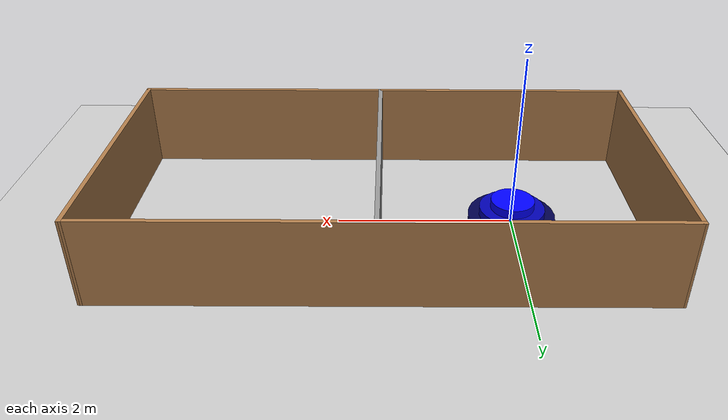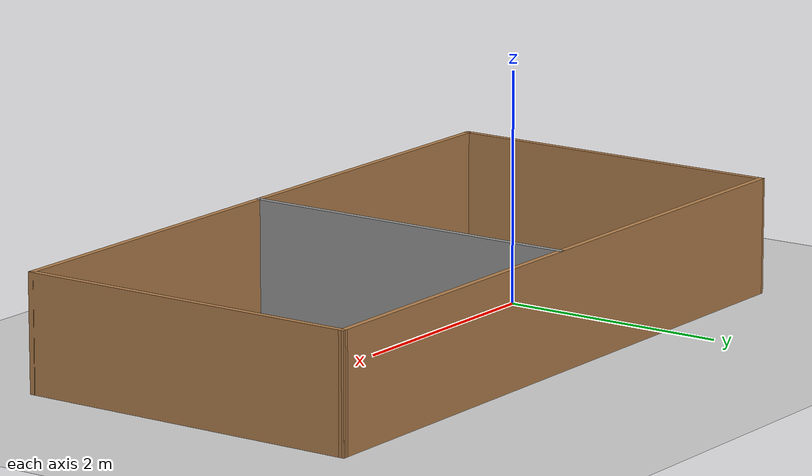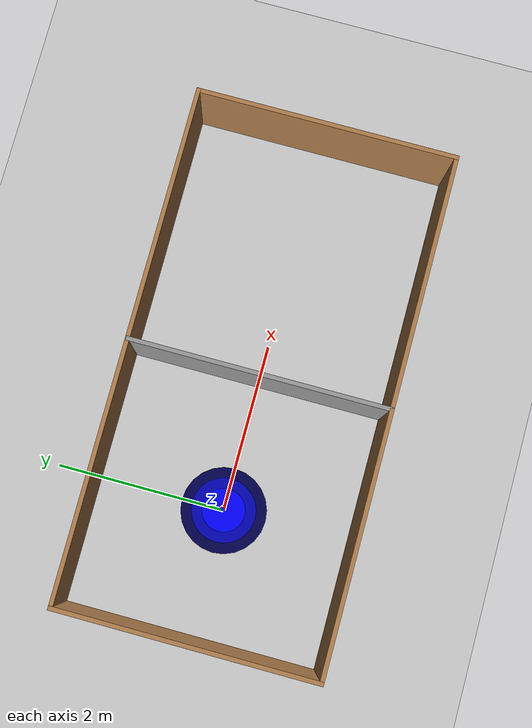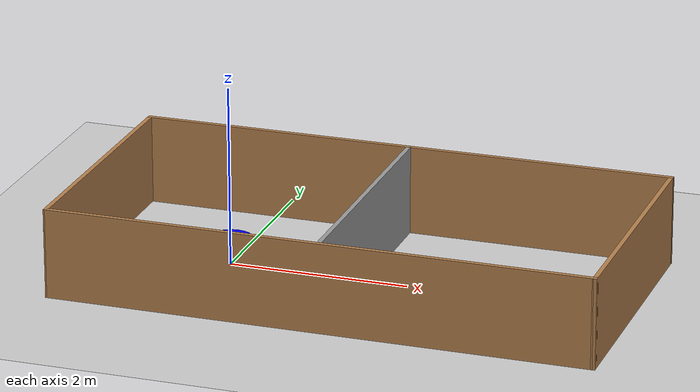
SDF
<sdf version="1.6">
 <world name="default">
  <light name="sun" type="directional">
   <pose>0 0 10 0 -0 0</pose>
   <diffuse>0.8 0.8 0.8 1</diffuse>
   <specular>0.2 0.2 0.2 1</specular>
   <attenuation>
    <range>1000</range>
    <constant>0.9</constant>
    <linear>0.01</linear>
    <quadratic>0.001</quadratic>
   </attenuation>
   <direction>-0.5 0.1 -0.9</direction>
  </light>
  <model name="ground_plane">
   <static>1</static>
   <link name="link">
    <collision name="collision">
     <geometry><plane><normal>0 0 1</normal><size>100 100</size></plane></geometry>
     <surface>
      <contact><collide_bitmask>65535</collide_bitmask></contact>
      <friction><ode><mu>100</mu><mu2>50</mu2></ode></friction>
     </surface>
    </collision>
    <visual name="visual">
     <cast_shadows>0</cast_shadows>
     <geometry><plane><normal>0 0 1</normal><size>100 100</size></plane></geometry>
     <material>
      <script><uri>file://media/materials/scripts/gazebo.material</uri><name>Gazebo/Grey</name></script>
     </material>
    </visual>
   </link>
  </model>
  <gravity>0 0 -9.8</gravity>
  <magnetic_field>6e-06 2.3e-05 -4.2e-05</magnetic_field>
  <atmosphere type="adiabatic"/>
  <physics type="ode">
   <ode>
    <solver><type>quick</type><iters>1000</iters><sor>1.3</sor></solver>
    <constraints>
     <cfm>0</cfm>
     <erp>0.2</erp>
     <contact_max_correcting_vel>100</contact_max_correcting_vel>
     <contact_surface_layer>0.001</contact_surface_layer>
    </constraints>
   </ode>
   <max_step_size>0.01</max_step_size>
   <real_time_factor>1</real_time_factor>
   <real_time_update_rate>100</real_time_update_rate>
   <gravity>0 0 -9.8</gravity>
  </physics>
  <scene><ambient>0.4 0.4 0.4 1</ambient><background>0.7 0.7 0.7 1</background><shadows>1</shadows></scene>
  <plugin name="ros_interface_plugin" filename="librotors_gazebo_ros_interface_plugin.so"/>
  <spherical_coordinates>
   <surface_model>EARTH_WGS84</surface_model>
   <latitude_deg>47.3667</latitude_deg>
   <longitude_deg>8.5500</longitude_deg>
   <elevation>500.0</elevation>
   <heading_deg>0</heading_deg>
  </spherical_coordinates>
  <model name="cylinder_load">
   <link name="link_0">
    <inertial>
     <mass>1</mass>
     <inertia><ixx>0.145833</ixx><ixy>0</ixy><ixz>0</ixz><iyy>0.145833</iyy><iyz>0</iyz><izz>0.125</izz></inertia>
    </inertial>
    <pose>0 0 -0.1 0 -0 0</pose>
    <kinematic>1</kinematic>
    <visual name="visual">
     <geometry><cylinder><radius>0.5</radius><length>0.1</length></cylinder></geometry>
     <material>
      <lighting>1</lighting>
      <script><uri>file://media/materials/scripts/gazebo.material</uri><name>Gazebo/Grey</name></script>
      <shader type="pixel"><normal_map>__default__</normal_map></shader>
      <ambient>0 0 0.3 1</ambient>
      <diffuse>0.7 0.7 0.7 1</diffuse>
      <specular>0.01 0.01 0.01 1</specular>
      <emissive>0 0 0 1</emissive>
     </material>
    </visual>
    <collision name="collision">
     <geometry><cylinder><radius>0.5</radius><length>0.1</length></cylinder></geometry>
     <surface>
      <friction>
       <ode><mu>1</mu><mu2>1</mu2><fdir1>0 0 0</fdir1><slip1>0</slip1><slip2>0</slip2></ode>
       <torsional>
        <coefficient>1</coefficient>
        <patch_radius>0</patch_radius>
        <surface_radius>0</surface_radius>
        <use_patch_radius>1</use_patch_radius>
        <ode><slip>0</slip></ode>
       </torsional>
      </friction>
      <bounce><restitution_coefficient>0</restitution_coefficient><threshold>1e+06</threshold></bounce>
      <contact>
       <collide_without_contact>0</collide_without_contact>
       <collide_without_contact_bitmask>1</collide_without_contact_bitmask>
       <collide_bitmask>1</collide_bitmask>
       <ode>
        <soft_cfm>0</soft_cfm>
        <soft_erp>0.2</soft_erp>
        <kp>1e+13</kp>
        <kd>1</kd>
        <max_vel>0.01</max_vel>
        <min_depth>0</min_depth>
       </ode>
       <bullet>
        <split_impulse>1</split_impulse>
        <split_impulse_penetration_threshold>-0.01</split_impulse_penetration_threshold>
        <soft_cfm>0</soft_cfm>
        <soft_erp>0.2</soft_erp>
        <kp>1e+13</kp>
        <kd>1</kd>
       </bullet>
      </contact>
     </surface>
    </collision>
   </link>
   <link name="link_1">
    <inertial>
     <mass>0.0883573</mass>
     <inertia>
      <ixx>0.00317994</ixx>
      <ixy>0</ixy>
      <ixz>0</ixz>
      <iyy>0.00317994</iyy>
      <iyz>0</iyz>
      <izz>0.00621262</izz>
     </inertia>
    </inertial>
    <kinematic>1</kinematic>
    <visual name="visual">
     <geometry><cylinder><radius>0.375</radius><length>0.1</length></cylinder></geometry>
     <material>
      <lighting>1</lighting>
      <script><uri>file://media/materials/scripts/gazebo.material</uri><name>Gazebo/Grey</name></script>
      <shader type="pixel"><normal_map>__default__</normal_map></shader>
      <ambient>0 0 0.7 1</ambient>
      <diffuse>0.7 0.7 0.7 1</diffuse>
      <specular>0.01 0.01 0.01 1</specular>
      <emissive>0 0 0 1</emissive>
     </material>
    </visual>
    <collision name="collision">
     <geometry><cylinder><radius>0.375</radius><length>0.1</length></cylinder></geometry>
     <surface>
      <friction>
       <ode><mu>1</mu><mu2>1</mu2><fdir1>0 0 0</fdir1><slip1>0</slip1><slip2>0</slip2></ode>
       <torsional>
        <coefficient>1</coefficient>
        <patch_radius>0</patch_radius>
        <surface_radius>0</surface_radius>
        <use_patch_radius>1</use_patch_radius>
        <ode><slip>0</slip></ode>
       </torsional>
      </friction>
      <bounce><restitution_coefficient>0</restitution_coefficient><threshold>1e+06</threshold></bounce>
      <contact>
       <collide_without_contact>0</collide_without_contact>
       <collide_without_contact_bitmask>1</collide_without_contact_bitmask>
       <collide_bitmask>1</collide_bitmask>
       <ode>
        <soft_cfm>0</soft_cfm>
        <soft_erp>0.2</soft_erp>
        <kp>1e+13</kp>
        <kd>1</kd>
        <max_vel>0.01</max_vel>
        <min_depth>0</min_depth>
       </ode>
       <bullet>
        <split_impulse>1</split_impulse>
        <split_impulse_penetration_threshold>-0.01</split_impulse_penetration_threshold>
        <soft_cfm>0</soft_cfm>
        <soft_erp>0.2</soft_erp>
        <kp>1e+13</kp>
        <kd>1</kd>
       </bullet>
      </contact>
     </surface>
    </collision>
   </link>
   <link name="link_2">
    <inertial>
     <mass>0.019635</mass>
     <inertia>
      <ixx>0.00032316</ixx>
      <ixy>0</ixy>
      <ixz>0</ixz>
      <iyy>0.00032316</iyy>
      <iyz>0</iyz>
      <izz>0.00061359</izz>
     </inertia>
    </inertial>
    <pose>0 0 0.1 0 -0 0</pose>
    <kinematic>1</kinematic>
    <visual name="visual">
     <geometry><cylinder><radius>0.25</radius><length>0.1</length></cylinder></geometry>
     <material>
      <lighting>1</lighting>
      <script><uri>file://media/materials/scripts/gazebo.material</uri><name>Gazebo/Grey</name></script>
      <shader type="pixel"><normal_map>__default__</normal_map></shader>
      <ambient>0 0 1 1</ambient>
      <diffuse>0.7 0.7 0.7 1</diffuse>
      <specular>0.01 0.01 0.01 1</specular>
      <emissive>0 0 0 1</emissive>
     </material>
    </visual>
    <collision name="collision">
     <geometry><cylinder><radius>0.25</radius><length>0.1</length></cylinder></geometry>
     <surface>
      <friction>
       <ode><mu>1</mu><mu2>1</mu2><fdir1>0 0 0</fdir1><slip1>0</slip1><slip2>0</slip2></ode>
       <torsional>
        <coefficient>1</coefficient>
        <patch_radius>0</patch_radius>
        <surface_radius>0</surface_radius>
        <use_patch_radius>1</use_patch_radius>
        <ode><slip>0</slip></ode>
       </torsional>
      </friction>
      <bounce><restitution_coefficient>0</restitution_coefficient><threshold>1e+06</threshold></bounce>
      <contact>
       <collide_without_contact>0</collide_without_contact>
       <collide_without_contact_bitmask>1</collide_without_contact_bitmask>
       <collide_bitmask>1</collide_bitmask>
       <ode>
        <soft_cfm>0</soft_cfm>
        <soft_erp>0.2</soft_erp>
        <kp>1e+13</kp>
        <kd>1</kd>
        <max_vel>0.01</max_vel>
        <min_depth>0</min_depth>
       </ode>
       <bullet>
        <split_impulse>1</split_impulse>
        <split_impulse_penetration_threshold>-0.01</split_impulse_penetration_threshold>
        <soft_cfm>0</soft_cfm>
        <soft_erp>0.2</soft_erp>
        <kp>1e+13</kp>
        <kd>1</kd>
       </bullet>
      </contact>
     </surface>
    </collision>
   </link>
   <static>0</static>
   <pose>0 0 0.15 0 -0 0</pose>
  </model>
  <model name="walls_b">
   <pose>1.4915 0.006527 0 0 -0 0</pose>
   <link name="Wall_0">
    <collision name="Wall_0_Collision">
     <geometry><box><size>3.05 0.05 1</size></box></geometry>
     <pose>0 0 0.5 0 -0 0</pose>
    </collision>
    <visual name="Wall_0_Visual">
     <pose>0 0 0.5 0 -0 0</pose>
     <geometry><box><size>3.05 0.05 1</size></box></geometry>
     <material>
      <script><uri>file://media/materials/scripts/gazebo.material</uri><name>Gazebo/Wood</name></script>
      <ambient>1 1 1 1</ambient>
     </material>
     <meta><layer>0</layer></meta>
    </visual>
    <pose>-2.9915 -0.006527 0 0 -0 1.5708</pose>
   </link>
   <link name="Wall_11">
    <collision name="Wall_11_Collision">
     <geometry><box><size>6.03302 0.05 1</size></box></geometry>
     <pose>0 0 0.5 0 -0 0</pose>
    </collision>
    <visual name="Wall_11_Visual">
     <pose>0 0 0.5 0 -0 0</pose>
     <geometry><box><size>6.03302 0.05 1</size></box></geometry>
     <material>
      <script><uri>file://media/materials/scripts/gazebo.material</uri><name>Gazebo/Wood</name></script>
      <ambient>1 1 1 1</ambient>
     </material>
     <meta><layer>0</layer></meta>
    </visual>
    <pose>0 1.50097 0 0 -0 0.002507</pose>
    <kinematic>1</kinematic>
   </link>
   <link name="Wall_14">
    <collision name="Wall_14_Collision">
     <geometry><box><size>6.033 0.05 1</size></box></geometry>
     <pose>0 0 0.5 0 -0 0</pose>
    </collision>
    <visual name="Wall_14_Visual">
     <pose>0 0 0.5 0 -0 0</pose>
     <geometry><box><size>6.033 0.05 1</size></box></geometry>
     <material>
      <script><uri>file://media/materials/scripts/gazebo.material</uri><name>Gazebo/Wood</name></script>
      <ambient>1 1 1 1</ambient>
     </material>
     <meta><layer>0</layer></meta>
    </visual>
    <pose>0 -1.50753 0 0 -0 -0.000334</pose>
   </link>
   <link name="Wall_2">
    <collision name="Wall_2_Collision">
     <geometry><box><size>3.067 0.05 1</size></box></geometry>
     <pose>0 0 0.5 0 -0 0</pose>
    </collision>
    <visual name="Wall_2_Visual">
     <pose>0 0 0.5 0 -0 0</pose>
     <geometry><box><size>3.067 0.05 1</size></box></geometry>
     <material>
      <script><uri>file://media/materials/scripts/gazebo.material</uri><name>Gazebo/Wood</name></script>
      <ambient>1 1 1 1</ambient>
     </material>
     <meta><layer>0</layer></meta>
    </visual>
    <pose>2.9915 -2.7e-05 0 0 -0 1.5708</pose>
   </link>
   <link name="Wall_5">
    <collision name="Wall_5_Collision">
     <geometry><box><size>3.05 0.05 1</size></box></geometry>
     <pose>0 0 0.5 0 -0 0</pose>
    </collision>
    <visual name="Wall_5_Visual">
     <pose>0 0 0.5 0 -0 0</pose>
     <geometry><box><size>3.05 0.05 1</size></box></geometry>
     <material>
      <script><uri>file://media/materials/scripts/gazebo.material</uri><name>Gazebo/Grey</name></script>
      <ambient>1 1 1 1</ambient>
     </material>
     <meta><layer>0</layer></meta>
    </visual>
    <pose>0.0385 -0.006527 0 0 -0 1.5708</pose>
   </link>
   <static>1</static>
  </model>
 </world>
</sdf>
